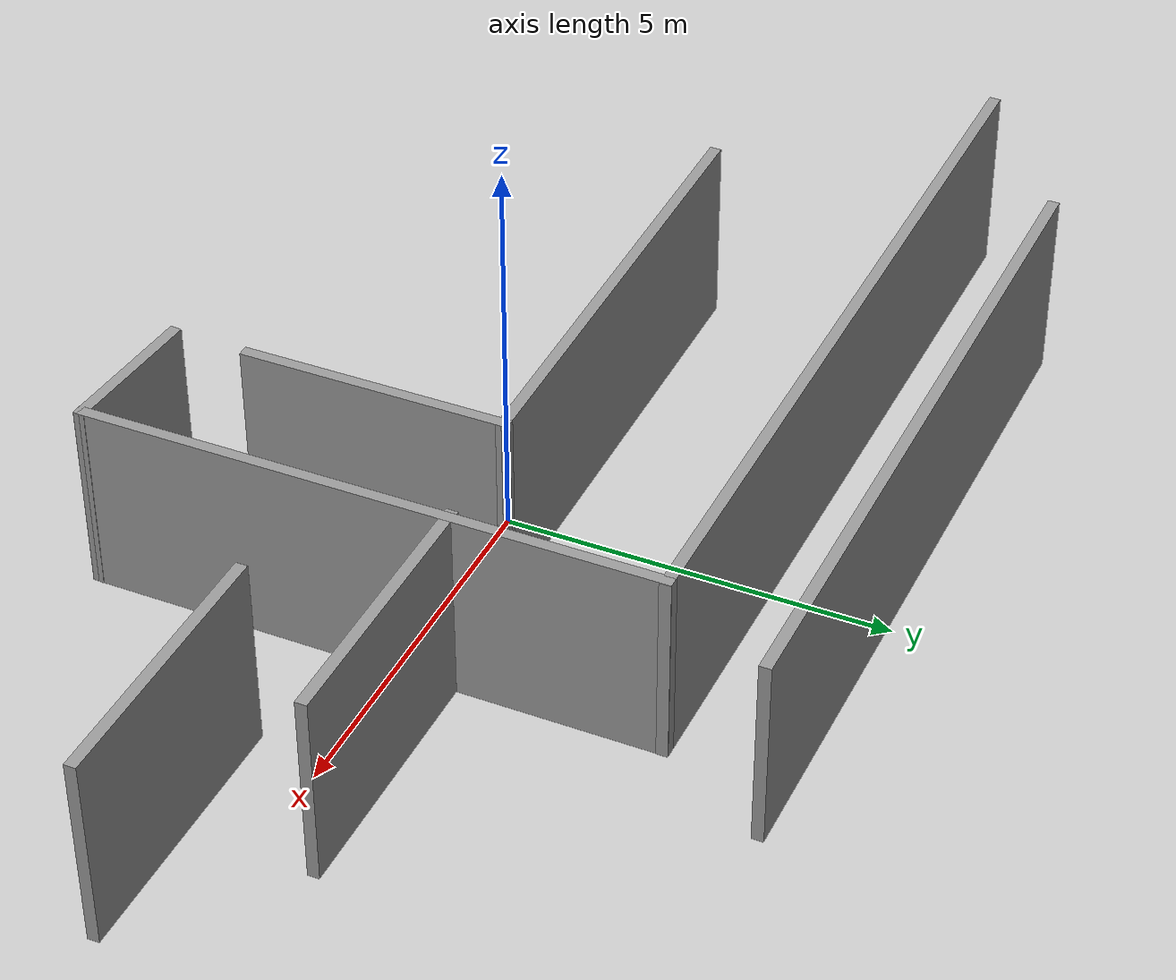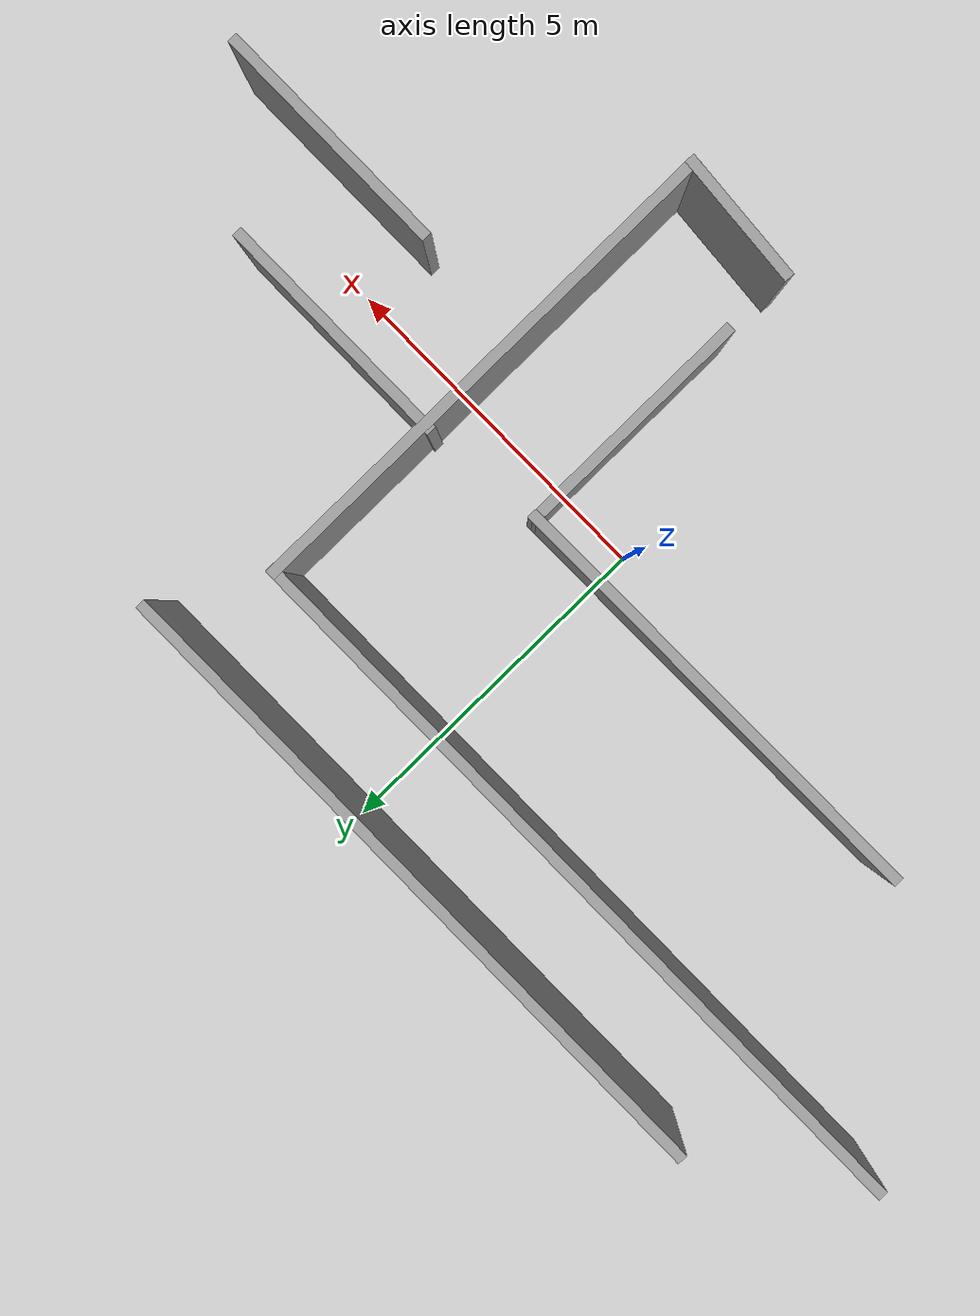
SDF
<?xml version='1.0'?>
<sdf version='1.7'>
  <model name='Untitled'>
    <pose>0.093322 0.441825 0 0 -0 0</pose>
    <link name='Wall_33'>
      <collision name='Wall_33_Collision'>
        <geometry>
          <box>
            <size>9.75 0.15 2.5</size>
          </box>
        </geometry>
        <pose>0 0 1.25 0 -0 0</pose>
      </collision>
      <visual name='Wall_33_Visual'>
        <pose>0 0 1.25 0 -0 0</pose>
        <geometry>
          <box>
            <size>9.75 0.15 2.5</size>
          </box>
        </geometry>
        <material>
          <script>
            <uri>file://media/materials/scripts/gazebo.material</uri>
            <name>Gazebo/Grey</name>
          </script>
          <ambient>1 1 1 1</ambient>
        </material>
        <meta>
          <layer>0</layer>
        </meta>
      </visual>
      <pose>-1.0954 4.41841 0 0 -0 0</pose>
    </link>
    <link name='Wall_36'>
      <collision name='Wall_36_Collision'>
        <geometry>
          <box>
            <size>6.53088 0.15 2.5</size>
          </box>
        </geometry>
        <pose>0 0 1.25 0 -0 0</pose>
      </collision>
      <visual name='Wall_36_Visual'>
        <pose>0 0 1.25 0 -0 0</pose>
        <geometry>
          <box>
            <size>6.53088 0.15 2.5</size>
          </box>
        </geometry>
        <material>
          <script>
            <uri>file://media/materials/scripts/gazebo.material</uri>
            <name>Gazebo/Grey</name>
          </script>
          <ambient>1 1 1 1</ambient>
        </material>
        <meta>
          <layer>0</layer>
        </meta>
      </visual>
      <pose>-2.1061 0.076628 0 0 -0 -3.132</pose>
    </link>
    <link name='Wall_39'>
      <collision name='Wall_39_Collision'>
        <geometry>
          <box>
            <size>1.96496 0.15 2.5</size>
          </box>
        </geometry>
        <pose>0 0 1.25 0 -0 0</pose>
      </collision>
      <visual name='Wall_39_Visual'>
        <pose>0 0 1.25 0 -0 0</pose>
        <geometry>
          <box>
            <size>1.96496 0.15 2.5</size>
          </box>
        </geometry>
        <material>
          <script>
            <uri>file://media/materials/scripts/gazebo.material</uri>
            <name>Gazebo/Grey</name>
          </script>
          <ambient>1 1 1 1</ambient>
        </material>
        <meta>
          <layer>0</layer>
        </meta>
      </visual>
      <pose>1.98899 -4.34312 0 0 -0 -0.076933</pose>
    </link>
    <link name='Wall_40'>
      <collision name='Wall_40_Collision'>
        <geometry>
          <box>
            <size>7.5 0.15 2.5</size>
          </box>
        </geometry>
        <pose>0 0 1.25 0 -0 0</pose>
      </collision>
      <visual name='Wall_40_Visual'>
        <pose>0 0 1.25 0 -0 0</pose>
        <geometry>
          <box>
            <size>7.5 0.15 2.5</size>
          </box>
        </geometry>
        <material>
          <script>
            <uri>file://media/materials/scripts/gazebo.material</uri>
            <name>Gazebo/Grey</name>
          </script>
          <ambient>1 1 1 1</ambient>
        </material>
        <meta>
          <layer>0</layer>
        </meta>
      </visual>
      <pose>2.89379 -0.737865 0 0 -0 1.5708</pose>
    </link>
    <link name='Wall_41'>
      <collision name='Wall_41_Collision'>
        <geometry>
          <box>
            <size>11.0302 0.15 2.5</size>
          </box>
        </geometry>
        <pose>0 0 1.25 0 -0 0</pose>
      </collision>
      <visual name='Wall_41_Visual'>
        <pose>0 0 1.25 0 -0 0</pose>
        <geometry>
          <box>
            <size>11.0302 0.15 2.5</size>
          </box>
        </geometry>
        <material>
          <script>
            <uri>file://media/materials/scripts/gazebo.material</uri>
            <name>Gazebo/Grey</name>
          </script>
          <ambient>1 1 1 1</ambient>
        </material>
        <meta>
          <layer>0</layer>
        </meta>
      </visual>
      <pose>-2.53877 2.93714 0 0 -0 3.14159</pose>
    </link>
    <link name='Wall_43'>
      <collision name='Wall_43_Collision'>
        <geometry>
          <box>
            <size>3.5 0.15 2.5</size>
          </box>
        </geometry>
        <pose>0 0 1.25 0 -0 0</pose>
      </collision>
      <visual name='Wall_43_Visual'>
        <pose>0 0 1.25 0 -0 0</pose>
        <geometry>
          <box>
            <size>3.5 0.15 2.5</size>
          </box>
        </geometry>
        <material>
          <script>
            <uri>file://media/materials/scripts/gazebo.material</uri>
            <name>Gazebo/Grey</name>
          </script>
          <ambient>1 1 1 1</ambient>
        </material>
        <meta>
          <layer>0</layer>
        </meta>
      </visual>
      <pose>4.52385 0.290412 0 0 -0 0</pose>
    </link>
    <link name='Wall_45'>
      <collision name='Wall_45_Collision'>
        <geometry>
          <box>
            <size>3.5 0.15 2.5</size>
          </box>
        </geometry>
        <pose>0 0 1.25 0 -0 0</pose>
      </collision>
      <visual name='Wall_45_Visual'>
        <pose>0 0 1.25 0 -0 0</pose>
        <geometry>
          <box>
            <size>3.5 0.15 2.5</size>
          </box>
        </geometry>
        <material>
          <script>
            <uri>file://media/materials/scripts/gazebo.material</uri>
            <name>Gazebo/Grey</name>
          </script>
          <ambient>1 1 1 1</ambient>
        </material>
        <meta>
          <layer>0</layer>
        </meta>
      </visual>
      <pose>6.30389 -1.36827 0 0 -0 0</pose>
    </link>
    <link name='Wall_48'>
      <collision name='Wall_48_Collision'>
        <geometry>
          <box>
            <size>3.5 0.15 2.5</size>
          </box>
        </geometry>
        <pose>0 0 1.25 0 -0 0</pose>
      </collision>
      <visual name='Wall_48_Visual'>
        <pose>0 0 1.25 0 -0 0</pose>
        <geometry>
          <box>
            <size>3.5 0.15 2.5</size>
          </box>
        </geometry>
        <material>
          <script>
            <uri>file://media/materials/scripts/gazebo.material</uri>
            <name>Gazebo/Grey</name>
          </script>
          <ambient>1 1 1 1</ambient>
        </material>
        <meta>
          <layer>0</layer>
        </meta>
      </visual>
      <pose>1.0842 -1.56778 0 0 -0 -1.5708</pose>
    </link>
    <static>1</static>
  </model>
</sdf>
